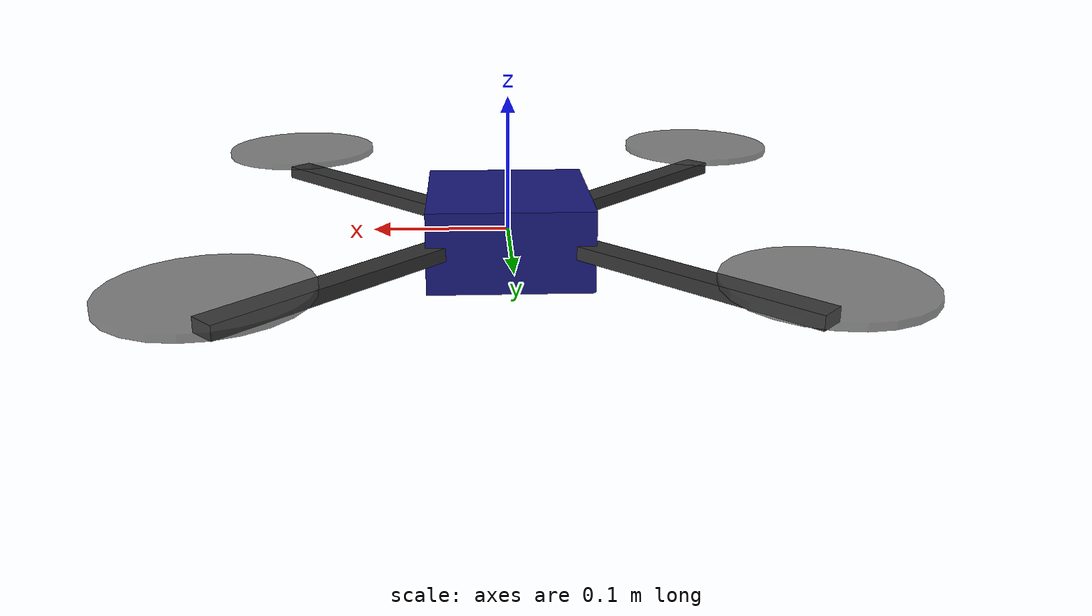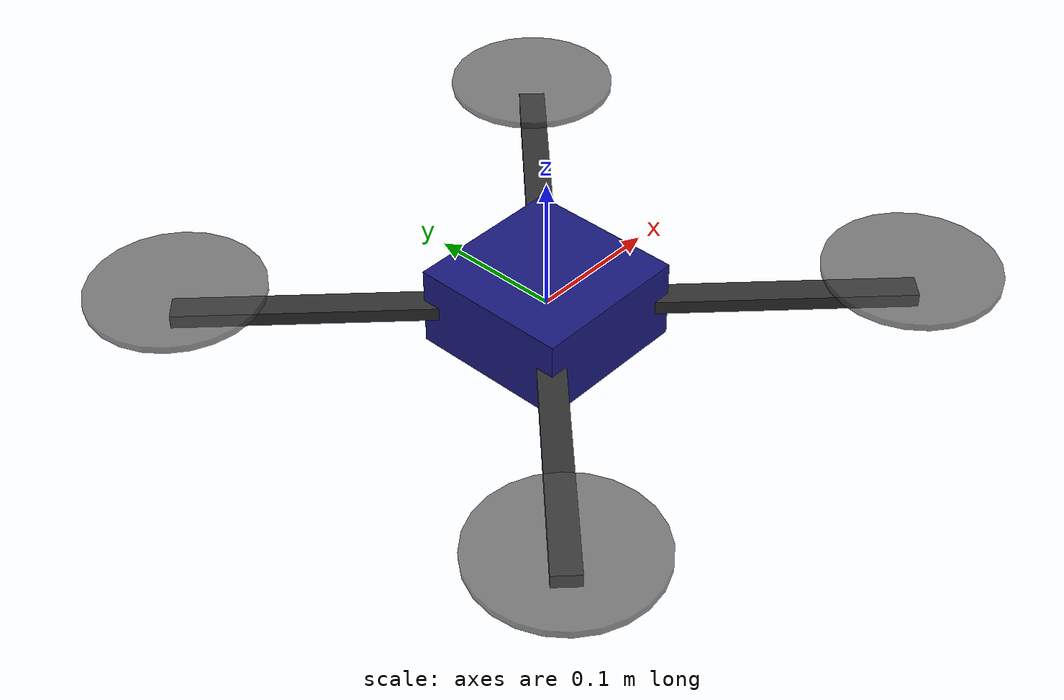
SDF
<?xml version="1.0" ?>
<sdf version="1.8">
  <model name="target_quadcopter">
    <link name="base_link">
      <inertial>
        <mass>1.2</mass>
        <inertia>
          <ixx>0.011</ixx><iyy>0.011</iyy><izz>0.021</izz>
          <ixy>0</ixy><ixz>0</ixz><iyz>0</iyz>
        </inertia>
      </inertial>
      <visual name="body_visual">
        <geometry><box><size>0.12 0.12 0.06</size></box></geometry>
        <material><ambient>0.1 0.1 0.5 1</ambient><diffuse>0.1 0.1 0.5 1</diffuse></material>
      </visual>
      <collision name="body_collision">
        <geometry><box><size>0.12 0.12 0.06</size></box></geometry>
      </collision>
      <visual name="arm_ne"><pose>0.106 0.106 0 0 0 0.7854</pose>
        <geometry><box><size>0.22 0.02 0.01</size></box></geometry>
        <material><ambient>0.2 0.2 0.2 1</ambient></material></visual>
      <collision name="arm_ne_col"><pose>0.106 0.106 0 0 0 0.7854</pose>
        <geometry><box><size>0.22 0.02 0.01</size></box></geometry></collision>
      <visual name="arm_nw"><pose>-0.106 0.106 0 0 0 -0.7854</pose>
        <geometry><box><size>0.22 0.02 0.01</size></box></geometry>
        <material><ambient>0.2 0.2 0.2 1</ambient></material></visual>
      <collision name="arm_nw_col"><pose>-0.106 0.106 0 0 0 -0.7854</pose>
        <geometry><box><size>0.22 0.02 0.01</size></box></geometry></collision>
      <visual name="arm_se"><pose>0.106 -0.106 0 0 0 -0.7854</pose>
        <geometry><box><size>0.22 0.02 0.01</size></box></geometry>
        <material><ambient>0.2 0.2 0.2 1</ambient></material></visual>
      <collision name="arm_se_col"><pose>0.106 -0.106 0 0 0 -0.7854</pose>
        <geometry><box><size>0.22 0.02 0.01</size></box></geometry></collision>
      <visual name="arm_sw"><pose>-0.106 -0.106 0 0 0 0.7854</pose>
        <geometry><box><size>0.22 0.02 0.01</size></box></geometry>
        <material><ambient>0.2 0.2 0.2 1</ambient></material></visual>
      <collision name="arm_sw_col"><pose>-0.106 -0.106 0 0 0 0.7854</pose>
        <geometry><box><size>0.22 0.02 0.01</size></box></geometry></collision>
      <visual name="prop_ne"><pose>0.18 0.18 0.02 0 0 0</pose>
        <geometry><cylinder><radius>0.0635</radius><length>0.005</length></cylinder></geometry>
        <material><ambient>0.3 0.3 0.3 0.7</ambient></material></visual>
      <collision name="prop_ne_col"><pose>0.18 0.18 0.02 0 0 0</pose>
        <geometry><cylinder><radius>0.0635</radius><length>0.005</length></cylinder></geometry></collision>
      <visual name="prop_nw"><pose>-0.18 0.18 0.02 0 0 0</pose>
        <geometry><cylinder><radius>0.0635</radius><length>0.005</length></cylinder></geometry>
        <material><ambient>0.3 0.3 0.3 0.7</ambient></material></visual>
      <collision name="prop_nw_col"><pose>-0.18 0.18 0.02 0 0 0</pose>
        <geometry><cylinder><radius>0.0635</radius><length>0.005</length></cylinder></geometry></collision>
      <visual name="prop_se"><pose>0.18 -0.18 0.02 0 0 0</pose>
        <geometry><cylinder><radius>0.0635</radius><length>0.005</length></cylinder></geometry>
        <material><ambient>0.3 0.3 0.3 0.7</ambient></material></visual>
      <collision name="prop_se_col"><pose>0.18 -0.18 0.02 0 0 0</pose>
        <geometry><cylinder><radius>0.0635</radius><length>0.005</length></cylinder></geometry></collision>
      <visual name="prop_sw"><pose>-0.18 -0.18 0.02 0 0 0</pose>
        <geometry><cylinder><radius>0.0635</radius><length>0.005</length></cylinder></geometry>
        <material><ambient>0.3 0.3 0.3 0.7</ambient></material></visual>
      <collision name="prop_sw_col"><pose>-0.18 -0.18 0.02 0 0 0</pose>
        <geometry><cylinder><radius>0.0635</radius><length>0.005</length></cylinder></geometry></collision>
    </link>

    <plugin filename="gz-sim-velocity-control-system"
            name="gz::sim::systems::VelocityControl">
      <topic>/model/target_quadcopter/cmd_vel</topic>
    </plugin>
    <plugin filename="gz-sim-odometry-publisher-system"
            name="gz::sim::systems::OdometryPublisher">
      <odom_frame>world</odom_frame>
      <robot_base_frame>base_link</robot_base_frame>
      <odom_publish_frequency>200</odom_publish_frequency>
      <dimensions>3</dimensions>
    </plugin>
  </model>
</sdf>
